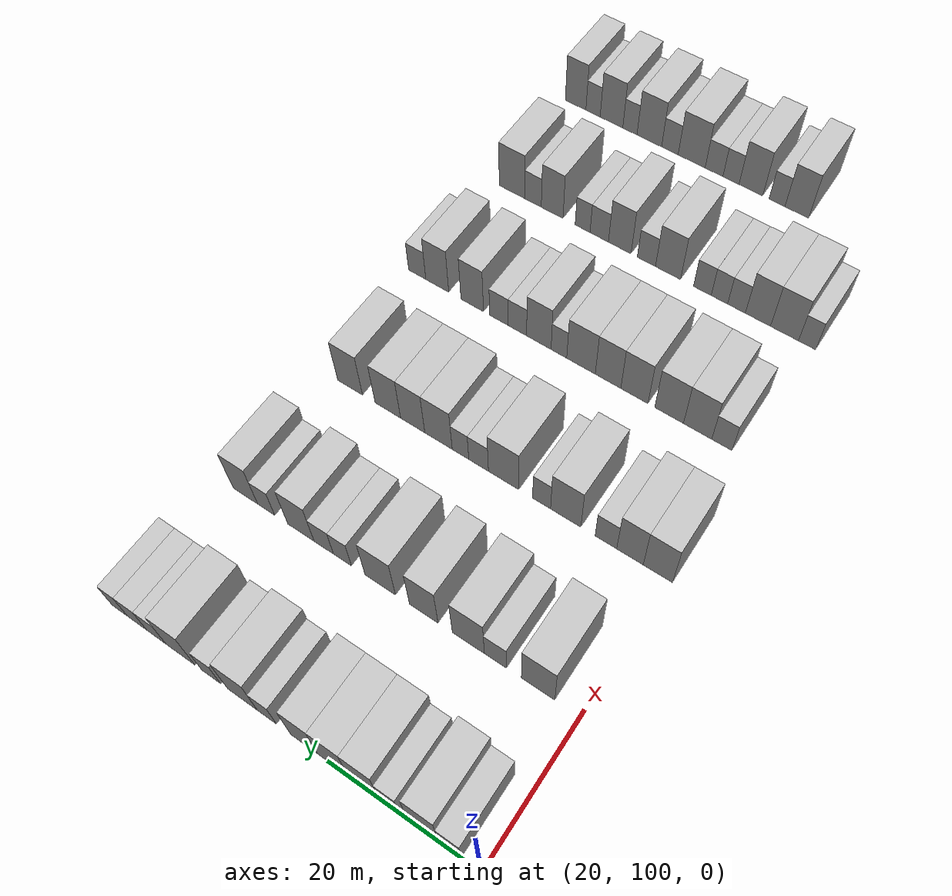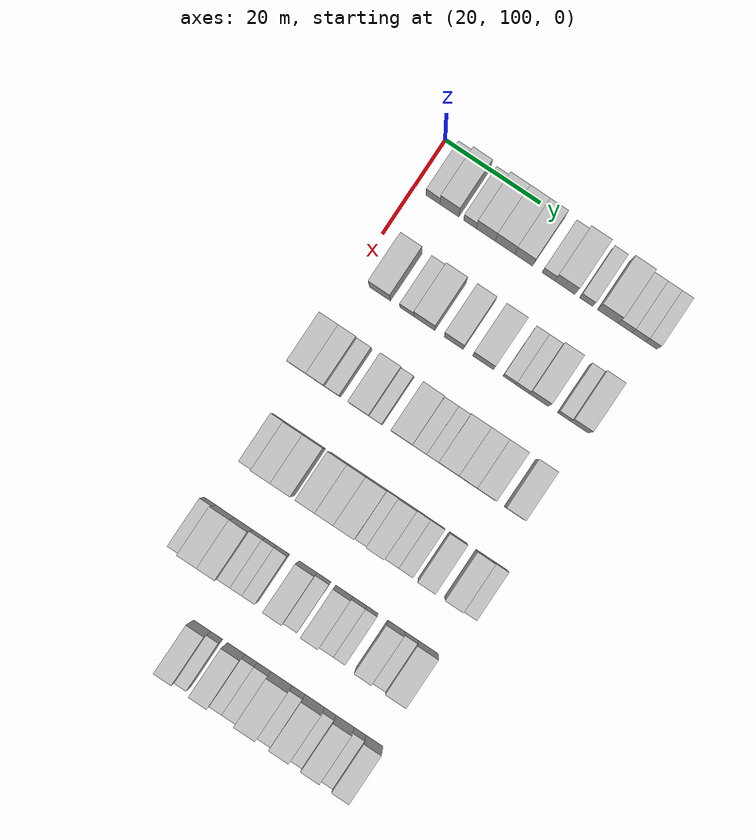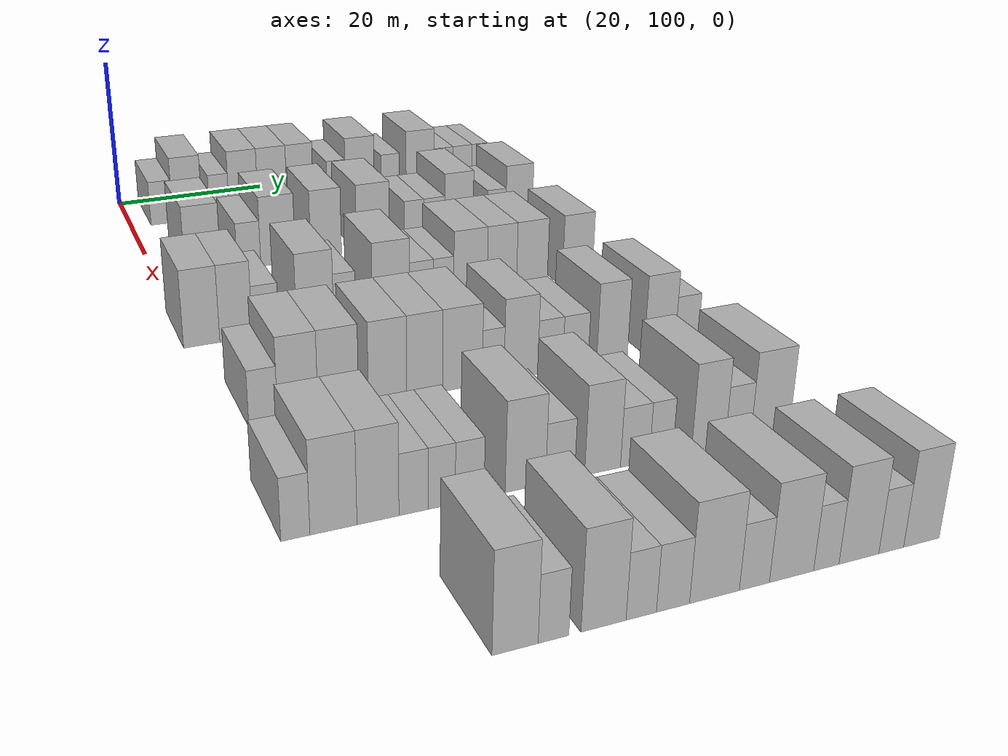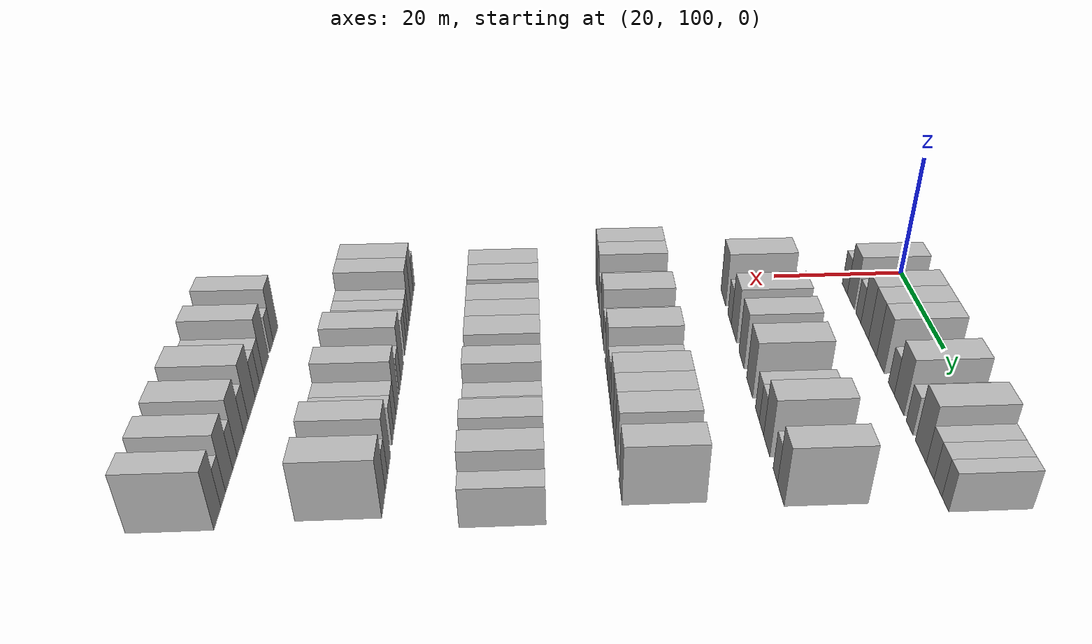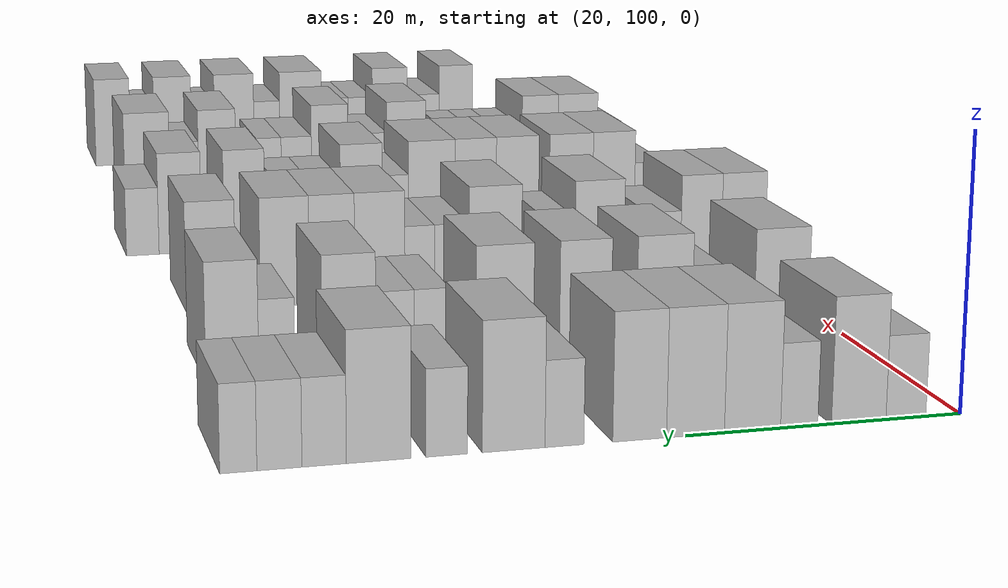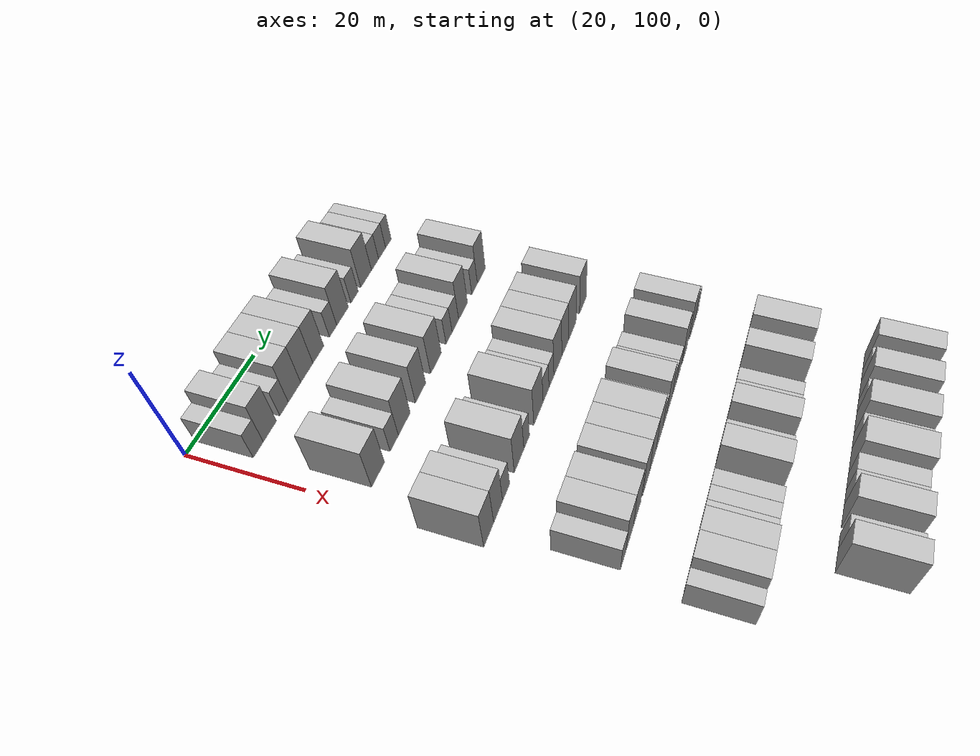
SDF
<sdf version="1.6">
 <world name="default">
  <model name="building_118">
   <static>1</static>
   <pose>25.0000 104.0523 0 0.000000 0.000000 0.000000</pose>
   <link name="link">
    <pose>0 0 3.00 0 0 0</pose>
    <collision name="collision"><geometry><box><size>10.0000 2.9543 6.0000</size></box></geometry></collision>
    <visual name="visual">
     <cast_shadows>0</cast_shadows>
     <geometry><box><size>10.0000 2.9543 6.0000</size></box></geometry>
     <material>
      <script>
       <uri>model://HANNAS_wall/materials/scripts</uri>
       <uri>model://HANNAS_wall/materials/textures</uri>
       <name>vrc/HANNAS_wall</name>
      </script>
     </material>
    </visual>
   </link>
  </model>
  <model name="building_119">
   <static>1</static>
   <pose>25.0000 107.5269 0 0.000000 0.000000 0.000000</pose>
   <link name="link">
    <pose>0 0 4.50 0 0 0</pose>
    <collision name="collision"><geometry><box><size>10.0000 3.9949 9.0000</size></box></geometry></collision>
    <visual name="visual">
     <cast_shadows>0</cast_shadows>
     <geometry><box><size>10.0000 3.9949 9.0000</size></box></geometry>
     <material>
      <script>
       <uri>model://HANNAS_wall/materials/scripts</uri>
       <uri>model://HANNAS_wall/materials/textures</uri>
       <name>vrc/HANNAS_wall</name>
      </script>
     </material>
    </visual>
   </link>
  </model>
  <model name="building_120">
   <static>1</static>
   <pose>25.0000 111.8724 0 0.000000 0.000000 0.000000</pose>
   <link name="link">
    <pose>0 0 3.00 0 0 0</pose>
    <collision name="collision"><geometry><box><size>10.0000 2.6960 6.0000</size></box></geometry></collision>
    <visual name="visual">
     <cast_shadows>0</cast_shadows>
     <geometry><box><size>10.0000 2.6960 6.0000</size></box></geometry>
     <material>
      <script>
       <uri>model://HANNAS_wall/materials/scripts</uri>
       <uri>model://HANNAS_wall/materials/textures</uri>
       <name>vrc/HANNAS_wall</name>
      </script>
     </material>
    </visual>
   </link>
  </model>
  <model name="building_121">
   <static>1</static>
   <pose>25.0000 115.2325 0 0.000000 0.000000 0.000000</pose>
   <link name="link">
    <pose>0 0 4.50 0 0 0</pose>
    <collision name="collision"><geometry><box><size>10.0000 4.0243 9.0000</size></box></geometry></collision>
    <visual name="visual">
     <cast_shadows>0</cast_shadows>
     <geometry><box><size>10.0000 4.0243 9.0000</size></box></geometry>
     <material>
      <script>
       <uri>model://HANNAS_wall/materials/scripts</uri>
       <uri>model://HANNAS_wall/materials/textures</uri>
       <name>vrc/HANNAS_wall</name>
      </script>
     </material>
    </visual>
   </link>
  </model>
  <model name="building_122">
   <static>1</static>
   <pose>25.0000 119.2965 0 0.000000 0.000000 0.000000</pose>
   <link name="link">
    <pose>0 0 4.50 0 0 0</pose>
    <collision name="collision"><geometry><box><size>10.0000 4.1036 9.0000</size></box></geometry></collision>
    <visual name="visual">
     <cast_shadows>0</cast_shadows>
     <geometry><box><size>10.0000 4.1036 9.0000</size></box></geometry>
     <material>
      <script>
       <uri>model://HANNAS_wall/materials/scripts</uri>
       <uri>model://HANNAS_wall/materials/textures</uri>
       <name>vrc/HANNAS_wall</name>
      </script>
     </material>
    </visual>
   </link>
  </model>
  <model name="building_123">
   <static>1</static>
   <pose>25.0000 123.2347 0 0.000000 0.000000 0.000000</pose>
   <link name="link">
    <pose>0 0 4.50 0 0 0</pose>
    <collision name="collision"><geometry><box><size>10.0000 3.7728 9.0000</size></box></geometry></collision>
    <visual name="visual">
     <cast_shadows>0</cast_shadows>
     <geometry><box><size>10.0000 3.7728 9.0000</size></box></geometry>
     <material>
      <script>
       <uri>model://HANNAS_wall/materials/scripts</uri>
       <uri>model://HANNAS_wall/materials/textures</uri>
       <name>vrc/HANNAS_wall</name>
      </script>
     </material>
    </visual>
   </link>
  </model>
  <model name="building_124">
   <static>1</static>
   <pose>25.0000 128.4607 0 0.000000 0.000000 0.000000</pose>
   <link name="link">
    <pose>0 0 3.00 0 0 0</pose>
    <collision name="collision"><geometry><box><size>10.0000 2.6792 6.0000</size></box></geometry></collision>
    <visual name="visual">
     <cast_shadows>0</cast_shadows>
     <geometry><box><size>10.0000 2.6792 6.0000</size></box></geometry>
     <material>
      <script>
       <uri>model://HANNAS_wall/materials/scripts</uri>
       <uri>model://HANNAS_wall/materials/textures</uri>
       <name>vrc/HANNAS_wall</name>
      </script>
     </material>
    </visual>
   </link>
  </model>
  <model name="building_125">
   <static>1</static>
   <pose>25.0000 131.9412 0 0.000000 0.000000 0.000000</pose>
   <link name="link">
    <pose>0 0 4.50 0 0 0</pose>
    <collision name="collision"><geometry><box><size>10.0000 4.2818 9.0000</size></box></geometry></collision>
    <visual name="visual">
     <cast_shadows>0</cast_shadows>
     <geometry><box><size>10.0000 4.2818 9.0000</size></box></geometry>
     <material>
      <script>
       <uri>model://HANNAS_wall/materials/scripts</uri>
       <uri>model://HANNAS_wall/materials/textures</uri>
       <name>vrc/HANNAS_wall</name>
      </script>
     </material>
    </visual>
   </link>
  </model>
  <model name="building_126">
   <static>1</static>
   <pose>25.0000 136.4782 0 0.000000 0.000000 0.000000</pose>
   <link name="link">
    <pose>0 0 3.00 0 0 0</pose>
    <collision name="collision"><geometry><box><size>10.0000 2.7922 6.0000</size></box></geometry></collision>
    <visual name="visual">
     <cast_shadows>0</cast_shadows>
     <geometry><box><size>10.0000 2.7922 6.0000</size></box></geometry>
     <material>
      <script>
       <uri>model://HANNAS_wall/materials/scripts</uri>
       <uri>model://HANNAS_wall/materials/textures</uri>
       <name>vrc/HANNAS_wall</name>
      </script>
     </material>
    </visual>
   </link>
  </model>
  <model name="building_127">
   <static>1</static>
   <pose>25.0000 141.0203 0 0.000000 0.000000 0.000000</pose>
   <link name="link">
    <pose>0 0 4.50 0 0 0</pose>
    <collision name="collision"><geometry><box><size>10.0000 4.2920 9.0000</size></box></geometry></collision>
    <visual name="visual">
     <cast_shadows>0</cast_shadows>
     <geometry><box><size>10.0000 4.2920 9.0000</size></box></geometry>
     <material>
      <script>
       <uri>model://HANNAS_wall/materials/scripts</uri>
       <uri>model://HANNAS_wall/materials/textures</uri>
       <name>vrc/HANNAS_wall</name>
      </script>
     </material>
    </visual>
   </link>
  </model>
  <model name="building_128">
   <static>1</static>
   <pose>25.0000 144.6242 0 0.000000 0.000000 0.000000</pose>
   <link name="link">
    <pose>0 0 3.00 0 0 0</pose>
    <collision name="collision"><geometry><box><size>10.0000 2.9158 6.0000</size></box></geometry></collision>
    <visual name="visual">
     <cast_shadows>0</cast_shadows>
     <geometry><box><size>10.0000 2.9158 6.0000</size></box></geometry>
     <material>
      <script>
       <uri>model://HANNAS_wall/materials/scripts</uri>
       <uri>model://HANNAS_wall/materials/textures</uri>
       <name>vrc/HANNAS_wall</name>
      </script>
     </material>
    </visual>
   </link>
  </model>
  <model name="building_129">
   <static>1</static>
   <pose>25.0000 147.5490 0 0.000000 0.000000 0.000000</pose>
   <link name="link">
    <pose>0 0 3.00 0 0 0</pose>
    <collision name="collision"><geometry><box><size>10.0000 2.9338 6.0000</size></box></geometry></collision>
    <visual name="visual">
     <cast_shadows>0</cast_shadows>
     <geometry><box><size>10.0000 2.9338 6.0000</size></box></geometry>
     <material>
      <script>
       <uri>model://HANNAS_wall/materials/scripts</uri>
       <uri>model://HANNAS_wall/materials/textures</uri>
       <name>vrc/HANNAS_wall</name>
      </script>
     </material>
    </visual>
   </link>
  </model>
  <model name="building_130">
   <static>1</static>
   <pose>25.0000 150.2169 0 0.000000 0.000000 0.000000</pose>
   <link name="link">
    <pose>0 0 3.00 0 0 0</pose>
    <collision name="collision"><geometry><box><size>10.0000 2.4021 6.0000</size></box></geometry></collision>
    <visual name="visual">
     <cast_shadows>0</cast_shadows>
     <geometry><box><size>10.0000 2.4021 6.0000</size></box></geometry>
     <material>
      <script>
       <uri>model://HANNAS_wall/materials/scripts</uri>
       <uri>model://HANNAS_wall/materials/textures</uri>
       <name>vrc/HANNAS_wall</name>
      </script>
     </material>
    </visual>
   </link>
  </model>
  <model name="building_294">
   <static>1</static>
   <pose>44.0000 105.5316 0 0.000000 0.000000 0.000000</pose>
   <link name="link">
    <pose>0 0 4.50 0 0 0</pose>
    <collision name="collision"><geometry><box><size>10.0000 4.4116 9.0000</size></box></geometry></collision>
    <visual name="visual">
     <cast_shadows>0</cast_shadows>
     <geometry><box><size>10.0000 4.4116 9.0000</size></box></geometry>
     <material>
      <script>
       <uri>model://HANNAS_wall/materials/scripts</uri>
       <uri>model://HANNAS_wall/materials/textures</uri>
       <name>vrc/HANNAS_wall</name>
      </script>
     </material>
    </visual>
   </link>
  </model>
  <model name="building_295">
   <static>1</static>
   <pose>44.0000 111.2223 0 0.000000 0.000000 0.000000</pose>
   <link name="link">
    <pose>0 0 3.00 0 0 0</pose>
    <collision name="collision"><geometry><box><size>10.0000 2.9697 6.0000</size></box></geometry></collision>
    <visual name="visual">
     <cast_shadows>0</cast_shadows>
     <geometry><box><size>10.0000 2.9697 6.0000</size></box></geometry>
     <material>
      <script>
       <uri>model://HANNAS_wall/materials/scripts</uri>
       <uri>model://HANNAS_wall/materials/textures</uri>
       <name>vrc/HANNAS_wall</name>
      </script>
     </material>
    </visual>
   </link>
  </model>
  <model name="building_296">
   <static>1</static>
   <pose>44.0000 114.9049 0 0.000000 0.000000 0.000000</pose>
   <link name="link">
    <pose>0 0 4.50 0 0 0</pose>
    <collision name="collision"><geometry><box><size>10.0000 4.3956 9.0000</size></box></geometry></collision>
    <visual name="visual">
     <cast_shadows>0</cast_shadows>
     <geometry><box><size>10.0000 4.3956 9.0000</size></box></geometry>
     <material>
      <script>
       <uri>model://HANNAS_wall/materials/scripts</uri>
       <uri>model://HANNAS_wall/materials/textures</uri>
       <name>vrc/HANNAS_wall</name>
      </script>
     </material>
    </visual>
   </link>
  </model>
  <model name="building_297">
   <static>1</static>
   <pose>44.0000 121.1136 0 0.000000 0.000000 0.000000</pose>
   <link name="link">
    <pose>0 0 4.50 0 0 0</pose>
    <collision name="collision"><geometry><box><size>10.0000 4.0219 9.0000</size></box></geometry></collision>
    <visual name="visual">
     <cast_shadows>0</cast_shadows>
     <geometry><box><size>10.0000 4.0219 9.0000</size></box></geometry>
     <material>
      <script>
       <uri>model://HANNAS_wall/materials/scripts</uri>
       <uri>model://HANNAS_wall/materials/textures</uri>
       <name>vrc/HANNAS_wall</name>
      </script>
     </material>
    </visual>
   </link>
  </model>
  <model name="building_298">
   <static>1</static>
   <pose>44.0000 127.3327 0 0.000000 0.000000 0.000000</pose>
   <link name="link">
    <pose>0 0 4.50 0 0 0</pose>
    <collision name="collision"><geometry><box><size>10.0000 4.4162 9.0000</size></box></geometry></collision>
    <visual name="visual">
     <cast_shadows>0</cast_shadows>
     <geometry><box><size>10.0000 4.4162 9.0000</size></box></geometry>
     <material>
      <script>
       <uri>model://HANNAS_wall/materials/scripts</uri>
       <uri>model://HANNAS_wall/materials/textures</uri>
       <name>vrc/HANNAS_wall</name>
      </script>
     </material>
    </visual>
   </link>
  </model>
  <model name="building_299">
   <static>1</static>
   <pose>44.0000 132.8720 0 0.000000 0.000000 0.000000</pose>
   <link name="link">
    <pose>0 0 3.00 0 0 0</pose>
    <collision name="collision"><geometry><box><size>10.0000 2.6623 6.0000</size></box></geometry></collision>
    <visual name="visual">
     <cast_shadows>0</cast_shadows>
     <geometry><box><size>10.0000 2.6623 6.0000</size></box></geometry>
     <material>
      <script>
       <uri>model://HANNAS_wall/materials/scripts</uri>
       <uri>model://HANNAS_wall/materials/textures</uri>
       <name>vrc/HANNAS_wall</name>
      </script>
     </material>
    </visual>
   </link>
  </model>
  <model name="building_300">
   <static>1</static>
   <pose>44.0000 135.6521 0 0.000000 0.000000 0.000000</pose>
   <link name="link">
    <pose>0 0 3.00 0 0 0</pose>
    <collision name="collision"><geometry><box><size>10.0000 2.8979 6.0000</size></box></geometry></collision>
    <visual name="visual">
     <cast_shadows>0</cast_shadows>
     <geometry><box><size>10.0000 2.8979 6.0000</size></box></geometry>
     <material>
      <script>
       <uri>model://HANNAS_wall/materials/scripts</uri>
       <uri>model://HANNAS_wall/materials/textures</uri>
       <name>vrc/HANNAS_wall</name>
      </script>
     </material>
    </visual>
   </link>
  </model>
  <model name="building_301">
   <static>1</static>
   <pose>44.0000 139.1037 0 0.000000 0.000000 0.000000</pose>
   <link name="link">
    <pose>0 0 4.50 0 0 0</pose>
    <collision name="collision"><geometry><box><size>10.0000 4.0052 9.0000</size></box></geometry></collision>
    <visual name="visual">
     <cast_shadows>0</cast_shadows>
     <geometry><box><size>10.0000 4.0052 9.0000</size></box></geometry>
     <material>
      <script>
       <uri>model://HANNAS_wall/materials/scripts</uri>
       <uri>model://HANNAS_wall/materials/textures</uri>
       <name>vrc/HANNAS_wall</name>
      </script>
     </material>
    </visual>
   </link>
  </model>
  <model name="building_302">
   <static>1</static>
   <pose>44.0000 144.4289 0 0.000000 0.000000 0.000000</pose>
   <link name="link">
    <pose>0 0 3.00 0 0 0</pose>
    <collision name="collision"><geometry><box><size>10.0000 2.6452 6.0000</size></box></geometry></collision>
    <visual name="visual">
     <cast_shadows>0</cast_shadows>
     <geometry><box><size>10.0000 2.6452 6.0000</size></box></geometry>
     <material>
      <script>
       <uri>model://HANNAS_wall/materials/scripts</uri>
       <uri>model://HANNAS_wall/materials/textures</uri>
       <name>vrc/HANNAS_wall</name>
      </script>
     </material>
    </visual>
   </link>
  </model>
  <model name="building_303">
   <static>1</static>
   <pose>44.0000 147.6780 0 0.000000 0.000000 0.000000</pose>
   <link name="link">
    <pose>0 0 4.50 0 0 0</pose>
    <collision name="collision"><geometry><box><size>10.0000 3.8530 9.0000</size></box></geometry></collision>
    <visual name="visual">
     <cast_shadows>0</cast_shadows>
     <geometry><box><size>10.0000 3.8530 9.0000</size></box></geometry>
     <material>
      <script>
       <uri>model://HANNAS_wall/materials/scripts</uri>
       <uri>model://HANNAS_wall/materials/textures</uri>
       <name>vrc/HANNAS_wall</name>
      </script>
     </material>
    </visual>
   </link>
  </model>
  <model name="building_467">
   <static>1</static>
   <pose>63.0000 101.2765 0 0.000000 0.000000 0.000000</pose>
   <link name="link">
    <pose>0 0 4.50 0 0 0</pose>
    <collision name="collision"><geometry><box><size>10.0000 3.9455 9.0000</size></box></geometry></collision>
    <visual name="visual">
     <cast_shadows>0</cast_shadows>
     <geometry><box><size>10.0000 3.9455 9.0000</size></box></geometry>
     <material>
      <script>
       <uri>model://HANNAS_wall/materials/scripts</uri>
       <uri>model://HANNAS_wall/materials/textures</uri>
       <name>vrc/HANNAS_wall</name>
      </script>
     </material>
    </visual>
   </link>
  </model>
  <model name="building_468">
   <static>1</static>
   <pose>63.0000 105.0587 0 0.000000 0.000000 0.000000</pose>
   <link name="link">
    <pose>0 0 4.50 0 0 0</pose>
    <collision name="collision"><geometry><box><size>10.0000 3.6188 9.0000</size></box></geometry></collision>
    <visual name="visual">
     <cast_shadows>0</cast_shadows>
     <geometry><box><size>10.0000 3.6188 9.0000</size></box></geometry>
     <material>
      <script>
       <uri>model://HANNAS_wall/materials/scripts</uri>
       <uri>model://HANNAS_wall/materials/textures</uri>
       <name>vrc/HANNAS_wall</name>
      </script>
     </material>
    </visual>
   </link>
  </model>
  <model name="building_469">
   <static>1</static>
   <pose>63.0000 108.3523 0 0.000000 0.000000 0.000000</pose>
   <link name="link">
    <pose>0 0 3.00 0 0 0</pose>
    <collision name="collision"><geometry><box><size>10.0000 2.9684 6.0000</size></box></geometry></collision>
    <visual name="visual">
     <cast_shadows>0</cast_shadows>
     <geometry><box><size>10.0000 2.9684 6.0000</size></box></geometry>
     <material>
      <script>
       <uri>model://HANNAS_wall/materials/scripts</uri>
       <uri>model://HANNAS_wall/materials/textures</uri>
       <name>vrc/HANNAS_wall</name>
      </script>
     </material>
    </visual>
   </link>
  </model>
  <model name="building_470">
   <static>1</static>
   <pose>63.0000 113.9792 0 0.000000 0.000000 0.000000</pose>
   <link name="link">
    <pose>0 0 4.50 0 0 0</pose>
    <collision name="collision"><geometry><box><size>10.0000 4.2854 9.0000</size></box></geometry></collision>
    <visual name="visual">
     <cast_shadows>0</cast_shadows>
     <geometry><box><size>10.0000 4.2854 9.0000</size></box></geometry>
     <material>
      <script>
       <uri>model://HANNAS_wall/materials/scripts</uri>
       <uri>model://HANNAS_wall/materials/textures</uri>
       <name>vrc/HANNAS_wall</name>
      </script>
     </material>
    </visual>
   </link>
  </model>
  <model name="building_471">
   <static>1</static>
   <pose>63.0000 117.4067 0 0.000000 0.000000 0.000000</pose>
   <link name="link">
    <pose>0 0 3.00 0 0 0</pose>
    <collision name="collision"><geometry><box><size>10.0000 2.5697 6.0000</size></box></geometry></collision>
    <visual name="visual">
     <cast_shadows>0</cast_shadows>
     <geometry><box><size>10.0000 2.5697 6.0000</size></box></geometry>
     <material>
      <script>
       <uri>model://HANNAS_wall/materials/scripts</uri>
       <uri>model://HANNAS_wall/materials/textures</uri>
       <name>vrc/HANNAS_wall</name>
      </script>
     </material>
    </visual>
   </link>
  </model>
  <model name="building_472">
   <static>1</static>
   <pose>63.0000 122.9207 0 0.000000 0.000000 0.000000</pose>
   <link name="link">
    <pose>0 0 4.50 0 0 0</pose>
    <collision name="collision"><geometry><box><size>10.0000 4.4583 9.0000</size></box></geometry></collision>
    <visual name="visual">
     <cast_shadows>0</cast_shadows>
     <geometry><box><size>10.0000 4.4583 9.0000</size></box></geometry>
     <material>
      <script>
       <uri>model://HANNAS_wall/materials/scripts</uri>
       <uri>model://HANNAS_wall/materials/textures</uri>
       <name>vrc/HANNAS_wall</name>
      </script>
     </material>
    </visual>
   </link>
  </model>
  <model name="building_473">
   <static>1</static>
   <pose>63.0000 126.6122 0 0.000000 0.000000 0.000000</pose>
   <link name="link">
    <pose>0 0 3.00 0 0 0</pose>
    <collision name="collision"><geometry><box><size>10.0000 2.9247 6.0000</size></box></geometry></collision>
    <visual name="visual">
     <cast_shadows>0</cast_shadows>
     <geometry><box><size>10.0000 2.9247 6.0000</size></box></geometry>
     <material>
      <script>
       <uri>model://HANNAS_wall/materials/scripts</uri>
       <uri>model://HANNAS_wall/materials/textures</uri>
       <name>vrc/HANNAS_wall</name>
      </script>
     </material>
    </visual>
   </link>
  </model>
  <model name="building_474">
   <static>1</static>
   <pose>63.0000 129.3201 0 0.000000 0.000000 0.000000</pose>
   <link name="link">
    <pose>0 0 3.00 0 0 0</pose>
    <collision name="collision"><geometry><box><size>10.0000 2.4909 6.0000</size></box></geometry></collision>
    <visual name="visual">
     <cast_shadows>0</cast_shadows>
     <geometry><box><size>10.0000 2.4909 6.0000</size></box></geometry>
     <material>
      <script>
       <uri>model://HANNAS_wall/materials/scripts</uri>
       <uri>model://HANNAS_wall/materials/textures</uri>
       <name>vrc/HANNAS_wall</name>
      </script>
     </material>
    </visual>
   </link>
  </model>
  <model name="building_475">
   <static>1</static>
   <pose>63.0000 132.6519 0 0.000000 0.000000 0.000000</pose>
   <link name="link">
    <pose>0 0 4.50 0 0 0</pose>
    <collision name="collision"><geometry><box><size>10.0000 4.1727 9.0000</size></box></geometry></collision>
    <visual name="visual">
     <cast_shadows>0</cast_shadows>
     <geometry><box><size>10.0000 4.1727 9.0000</size></box></geometry>
     <material>
      <script>
       <uri>model://HANNAS_wall/materials/scripts</uri>
       <uri>model://HANNAS_wall/materials/textures</uri>
       <name>vrc/HANNAS_wall</name>
      </script>
     </material>
    </visual>
   </link>
  </model>
  <model name="building_476">
   <static>1</static>
   <pose>63.0000 136.6117 0 0.000000 0.000000 0.000000</pose>
   <link name="link">
    <pose>0 0 4.50 0 0 0</pose>
    <collision name="collision"><geometry><box><size>10.0000 3.7470 9.0000</size></box></geometry></collision>
    <visual name="visual">
     <cast_shadows>0</cast_shadows>
     <geometry><box><size>10.0000 3.7470 9.0000</size></box></geometry>
     <material>
      <script>
       <uri>model://HANNAS_wall/materials/scripts</uri>
       <uri>model://HANNAS_wall/materials/textures</uri>
       <name>vrc/HANNAS_wall</name>
      </script>
     </material>
    </visual>
   </link>
  </model>
  <model name="building_477">
   <static>1</static>
   <pose>63.0000 140.4881 0 0.000000 0.000000 0.000000</pose>
   <link name="link">
    <pose>0 0 4.50 0 0 0</pose>
    <collision name="collision"><geometry><box><size>10.0000 4.0059 9.0000</size></box></geometry></collision>
    <visual name="visual">
     <cast_shadows>0</cast_shadows>
     <geometry><box><size>10.0000 4.0059 9.0000</size></box></geometry>
     <material>
      <script>
       <uri>model://HANNAS_wall/materials/scripts</uri>
       <uri>model://HANNAS_wall/materials/textures</uri>
       <name>vrc/HANNAS_wall</name>
      </script>
     </material>
    </visual>
   </link>
  </model>
  <model name="building_478">
   <static>1</static>
   <pose>63.0000 146.4846 0 0.000000 0.000000 0.000000</pose>
   <link name="link">
    <pose>0 0 4.50 0 0 0</pose>
    <collision name="collision"><geometry><box><size>10.0000 3.9870 9.0000</size></box></geometry></collision>
    <visual name="visual">
     <cast_shadows>0</cast_shadows>
     <geometry><box><size>10.0000 3.9870 9.0000</size></box></geometry>
     <material>
      <script>
       <uri>model://HANNAS_wall/materials/scripts</uri>
       <uri>model://HANNAS_wall/materials/textures</uri>
       <name>vrc/HANNAS_wall</name>
      </script>
     </material>
    </visual>
   </link>
  </model>
  <model name="building_619">
   <static>1</static>
   <pose>82.0000 103.1457 0 0.000000 0.000000 0.000000</pose>
   <link name="link">
    <pose>0 0 3.00 0 0 0</pose>
    <collision name="collision"><geometry><box><size>10.0000 2.8428 6.0000</size></box></geometry></collision>
    <visual name="visual">
     <cast_shadows>0</cast_shadows>
     <geometry><box><size>10.0000 2.8428 6.0000</size></box></geometry>
     <material>
      <script>
       <uri>model://HANNAS_wall/materials/scripts</uri>
       <uri>model://HANNAS_wall/materials/textures</uri>
       <name>vrc/HANNAS_wall</name>
      </script>
     </material>
    </visual>
   </link>
  </model>
  <model name="building_620">
   <static>1</static>
   <pose>82.0000 106.5761 0 0.000000 0.000000 0.000000</pose>
   <link name="link">
    <pose>0 0 4.50 0 0 0</pose>
    <collision name="collision"><geometry><box><size>10.0000 4.0182 9.0000</size></box></geometry></collision>
    <visual name="visual">
     <cast_shadows>0</cast_shadows>
     <geometry><box><size>10.0000 4.0182 9.0000</size></box></geometry>
     <material>
      <script>
       <uri>model://HANNAS_wall/materials/scripts</uri>
       <uri>model://HANNAS_wall/materials/textures</uri>
       <name>vrc/HANNAS_wall</name>
      </script>
     </material>
    </visual>
   </link>
  </model>
  <model name="building_621">
   <static>1</static>
   <pose>82.0000 110.6541 0 0.000000 0.000000 0.000000</pose>
   <link name="link">
    <pose>0 0 4.50 0 0 0</pose>
    <collision name="collision"><geometry><box><size>10.0000 4.1377 9.0000</size></box></geometry></collision>
    <visual name="visual">
     <cast_shadows>0</cast_shadows>
     <geometry><box><size>10.0000 4.1377 9.0000</size></box></geometry>
     <material>
      <script>
       <uri>model://HANNAS_wall/materials/scripts</uri>
       <uri>model://HANNAS_wall/materials/textures</uri>
       <name>vrc/HANNAS_wall</name>
      </script>
     </material>
    </visual>
   </link>
  </model>
  <model name="building_622">
   <static>1</static>
   <pose>82.0000 115.7243 0 0.000000 0.000000 0.000000</pose>
   <link name="link">
    <pose>0 0 4.50 0 0 0</pose>
    <collision name="collision"><geometry><box><size>10.0000 4.0026 9.0000</size></box></geometry></collision>
    <visual name="visual">
     <cast_shadows>0</cast_shadows>
     <geometry><box><size>10.0000 4.0026 9.0000</size></box></geometry>
     <material>
      <script>
       <uri>model://HANNAS_wall/materials/scripts</uri>
       <uri>model://HANNAS_wall/materials/textures</uri>
       <name>vrc/HANNAS_wall</name>
      </script>
     </material>
    </visual>
   </link>
  </model>
  <model name="building_623">
   <static>1</static>
   <pose>82.0000 119.6365 0 0.000000 0.000000 0.000000</pose>
   <link name="link">
    <pose>0 0 4.50 0 0 0</pose>
    <collision name="collision"><geometry><box><size>10.0000 3.8219 9.0000</size></box></geometry></collision>
    <visual name="visual">
     <cast_shadows>0</cast_shadows>
     <geometry><box><size>10.0000 3.8219 9.0000</size></box></geometry>
     <material>
      <script>
       <uri>model://HANNAS_wall/materials/scripts</uri>
       <uri>model://HANNAS_wall/materials/textures</uri>
       <name>vrc/HANNAS_wall</name>
      </script>
     </material>
    </visual>
   </link>
  </model>
  <model name="building_624">
   <static>1</static>
   <pose>82.0000 123.7132 0 0.000000 0.000000 0.000000</pose>
   <link name="link">
    <pose>0 0 4.50 0 0 0</pose>
    <collision name="collision"><geometry><box><size>10.0000 4.3314 9.0000</size></box></geometry></collision>
    <visual name="visual">
     <cast_shadows>0</cast_shadows>
     <geometry><box><size>10.0000 4.3314 9.0000</size></box></geometry>
     <material>
      <script>
       <uri>model://HANNAS_wall/materials/scripts</uri>
       <uri>model://HANNAS_wall/materials/textures</uri>
       <name>vrc/HANNAS_wall</name>
      </script>
     </material>
    </visual>
   </link>
  </model>
  <model name="building_625">
   <static>1</static>
   <pose>82.0000 127.0819 0 0.000000 0.000000 0.000000</pose>
   <link name="link">
    <pose>0 0 3.00 0 0 0</pose>
    <collision name="collision"><geometry><box><size>10.0000 2.4060 6.0000</size></box></geometry></collision>
    <visual name="visual">
     <cast_shadows>0</cast_shadows>
     <geometry><box><size>10.0000 2.4060 6.0000</size></box></geometry>
     <material>
      <script>
       <uri>model://HANNAS_wall/materials/scripts</uri>
       <uri>model://HANNAS_wall/materials/textures</uri>
       <name>vrc/HANNAS_wall</name>
      </script>
     </material>
    </visual>
   </link>
  </model>
  <model name="building_626">
   <static>1</static>
   <pose>82.0000 130.1892 0 0.000000 0.000000 0.000000</pose>
   <link name="link">
    <pose>0 0 4.50 0 0 0</pose>
    <collision name="collision"><geometry><box><size>10.0000 3.8086 9.0000</size></box></geometry></collision>
    <visual name="visual">
     <cast_shadows>0</cast_shadows>
     <geometry><box><size>10.0000 3.8086 9.0000</size></box></geometry>
     <material>
      <script>
       <uri>model://HANNAS_wall/materials/scripts</uri>
       <uri>model://HANNAS_wall/materials/textures</uri>
       <name>vrc/HANNAS_wall</name>
      </script>
     </material>
    </visual>
   </link>
  </model>
  <model name="building_627">
   <static>1</static>
   <pose>82.0000 133.5313 0 0.000000 0.000000 0.000000</pose>
   <link name="link">
    <pose>0 0 3.00 0 0 0</pose>
    <collision name="collision"><geometry><box><size>10.0000 2.8755 6.0000</size></box></geometry></collision>
    <visual name="visual">
     <cast_shadows>0</cast_shadows>
     <geometry><box><size>10.0000 2.8755 6.0000</size></box></geometry>
     <material>
      <script>
       <uri>model://HANNAS_wall/materials/scripts</uri>
       <uri>model://HANNAS_wall/materials/textures</uri>
       <name>vrc/HANNAS_wall</name>
      </script>
     </material>
    </visual>
   </link>
  </model>
  <model name="building_628">
   <static>1</static>
   <pose>82.0000 136.4435 0 0.000000 0.000000 0.000000</pose>
   <link name="link">
    <pose>0 0 3.00 0 0 0</pose>
    <collision name="collision"><geometry><box><size>10.0000 2.9489 6.0000</size></box></geometry></collision>
    <visual name="visual">
     <cast_shadows>0</cast_shadows>
     <geometry><box><size>10.0000 2.9489 6.0000</size></box></geometry>
     <material>
      <script>
       <uri>model://HANNAS_wall/materials/scripts</uri>
       <uri>model://HANNAS_wall/materials/textures</uri>
       <name>vrc/HANNAS_wall</name>
      </script>
     </material>
    </visual>
   </link>
  </model>
  <model name="building_629">
   <static>1</static>
   <pose>82.0000 140.7430 0 0.000000 0.000000 0.000000</pose>
   <link name="link">
    <pose>0 0 4.50 0 0 0</pose>
    <collision name="collision"><geometry><box><size>10.0000 3.6500 9.0000</size></box></geometry></collision>
    <visual name="visual">
     <cast_shadows>0</cast_shadows>
     <geometry><box><size>10.0000 3.6500 9.0000</size></box></geometry>
     <material>
      <script>
       <uri>model://HANNAS_wall/materials/scripts</uri>
       <uri>model://HANNAS_wall/materials/textures</uri>
       <name>vrc/HANNAS_wall</name>
      </script>
     </material>
    </visual>
   </link>
  </model>
  <model name="building_630">
   <static>1</static>
   <pose>82.0000 146.4532 0 0.000000 0.000000 0.000000</pose>
   <link name="link">
    <pose>0 0 4.50 0 0 0</pose>
    <collision name="collision"><geometry><box><size>10.0000 3.7704 9.0000</size></box></geometry></collision>
    <visual name="visual">
     <cast_shadows>0</cast_shadows>
     <geometry><box><size>10.0000 3.7704 9.0000</size></box></geometry>
     <material>
      <script>
       <uri>model://HANNAS_wall/materials/scripts</uri>
       <uri>model://HANNAS_wall/materials/textures</uri>
       <name>vrc/HANNAS_wall</name>
      </script>
     </material>
    </visual>
   </link>
  </model>
  <model name="building_631">
   <static>1</static>
   <pose>82.0000 149.7665 0 0.000000 0.000000 0.000000</pose>
   <link name="link">
    <pose>0 0 3.00 0 0 0</pose>
    <collision name="collision"><geometry><box><size>10.0000 2.8562 6.0000</size></box></geometry></collision>
    <visual name="visual">
     <cast_shadows>0</cast_shadows>
     <geometry><box><size>10.0000 2.8562 6.0000</size></box></geometry>
     <material>
      <script>
       <uri>model://HANNAS_wall/materials/scripts</uri>
       <uri>model://HANNAS_wall/materials/textures</uri>
       <name>vrc/HANNAS_wall</name>
      </script>
     </material>
    </visual>
   </link>
  </model>
  <model name="building_794">
   <static>1</static>
   <pose>101.0000 100.8990 0 0.000000 0.000000 0.000000</pose>
   <link name="link">
    <pose>0 0 3.00 0 0 0</pose>
    <collision name="collision"><geometry><box><size>10.0000 2.4793 6.0000</size></box></geometry></collision>
    <visual name="visual">
     <cast_shadows>0</cast_shadows>
     <geometry><box><size>10.0000 2.4793 6.0000</size></box></geometry>
     <material>
      <script>
       <uri>model://HANNAS_wall/materials/scripts</uri>
       <uri>model://HANNAS_wall/materials/textures</uri>
       <name>vrc/HANNAS_wall</name>
      </script>
     </material>
    </visual>
   </link>
  </model>
  <model name="building_795">
   <static>1</static>
   <pose>101.0000 104.1813 0 0.000000 0.000000 0.000000</pose>
   <link name="link">
    <pose>0 0 4.50 0 0 0</pose>
    <collision name="collision"><geometry><box><size>10.0000 4.0852 9.0000</size></box></geometry></collision>
    <visual name="visual">
     <cast_shadows>0</cast_shadows>
     <geometry><box><size>10.0000 4.0852 9.0000</size></box></geometry>
     <material>
      <script>
       <uri>model://HANNAS_wall/materials/scripts</uri>
       <uri>model://HANNAS_wall/materials/textures</uri>
       <name>vrc/HANNAS_wall</name>
      </script>
     </material>
    </visual>
   </link>
  </model>
  <model name="building_796">
   <static>1</static>
   <pose>101.0000 108.0874 0 0.000000 0.000000 0.000000</pose>
   <link name="link">
    <pose>0 0 4.50 0 0 0</pose>
    <collision name="collision"><geometry><box><size>10.0000 3.7269 9.0000</size></box></geometry></collision>
    <visual name="visual">
     <cast_shadows>0</cast_shadows>
     <geometry><box><size>10.0000 3.7269 9.0000</size></box></geometry>
     <material>
      <script>
       <uri>model://HANNAS_wall/materials/scripts</uri>
       <uri>model://HANNAS_wall/materials/textures</uri>
       <name>vrc/HANNAS_wall</name>
      </script>
     </material>
    </visual>
   </link>
  </model>
  <model name="building_797">
   <static>1</static>
   <pose>101.0000 111.2760 0 0.000000 0.000000 0.000000</pose>
   <link name="link">
    <pose>0 0 3.00 0 0 0</pose>
    <collision name="collision"><geometry><box><size>10.0000 2.6504 6.0000</size></box></geometry></collision>
    <visual name="visual">
     <cast_shadows>0</cast_shadows>
     <geometry><box><size>10.0000 2.6504 6.0000</size></box></geometry>
     <material>
      <script>
       <uri>model://HANNAS_wall/materials/scripts</uri>
       <uri>model://HANNAS_wall/materials/textures</uri>
       <name>vrc/HANNAS_wall</name>
      </script>
     </material>
    </visual>
   </link>
  </model>
  <model name="building_798">
   <static>1</static>
   <pose>101.0000 113.8405 0 0.000000 0.000000 0.000000</pose>
   <link name="link">
    <pose>0 0 3.00 0 0 0</pose>
    <collision name="collision"><geometry><box><size>10.0000 2.4785 6.0000</size></box></geometry></collision>
    <visual name="visual">
     <cast_shadows>0</cast_shadows>
     <geometry><box><size>10.0000 2.4785 6.0000</size></box></geometry>
     <material>
      <script>
       <uri>model://HANNAS_wall/materials/scripts</uri>
       <uri>model://HANNAS_wall/materials/textures</uri>
       <name>vrc/HANNAS_wall</name>
      </script>
     </material>
    </visual>
   </link>
  </model>
  <model name="building_799">
   <static>1</static>
   <pose>101.0000 116.4279 0 0.000000 0.000000 0.000000</pose>
   <link name="link">
    <pose>0 0 3.00 0 0 0</pose>
    <collision name="collision"><geometry><box><size>10.0000 2.6962 6.0000</size></box></geometry></collision>
    <visual name="visual">
     <cast_shadows>0</cast_shadows>
     <geometry><box><size>10.0000 2.6962 6.0000</size></box></geometry>
     <material>
      <script>
       <uri>model://HANNAS_wall/materials/scripts</uri>
       <uri>model://HANNAS_wall/materials/textures</uri>
       <name>vrc/HANNAS_wall</name>
      </script>
     </material>
    </visual>
   </link>
  </model>
  <model name="building_800">
   <static>1</static>
   <pose>101.0000 121.7258 0 0.000000 0.000000 0.000000</pose>
   <link name="link">
    <pose>0 0 4.50 0 0 0</pose>
    <collision name="collision"><geometry><box><size>10.0000 3.8997 9.0000</size></box></geometry></collision>
    <visual name="visual">
     <cast_shadows>0</cast_shadows>
     <geometry><box><size>10.0000 3.8997 9.0000</size></box></geometry>
     <material>
      <script>
       <uri>model://HANNAS_wall/materials/scripts</uri>
       <uri>model://HANNAS_wall/materials/textures</uri>
       <name>vrc/HANNAS_wall</name>
      </script>
     </material>
    </visual>
   </link>
  </model>
  <model name="building_801">
   <static>1</static>
   <pose>101.0000 125.1034 0 0.000000 0.000000 0.000000</pose>
   <link name="link">
    <pose>0 0 3.00 0 0 0</pose>
    <collision name="collision"><geometry><box><size>10.0000 2.8555 6.0000</size></box></geometry></collision>
    <visual name="visual">
     <cast_shadows>0</cast_shadows>
     <geometry><box><size>10.0000 2.8555 6.0000</size></box></geometry>
     <material>
      <script>
       <uri>model://HANNAS_wall/materials/scripts</uri>
       <uri>model://HANNAS_wall/materials/textures</uri>
       <name>vrc/HANNAS_wall</name>
      </script>
     </material>
    </visual>
   </link>
  </model>
  <model name="building_802">
   <static>1</static>
   <pose>101.0000 129.3386 0 0.000000 0.000000 0.000000</pose>
   <link name="link">
    <pose>0 0 4.50 0 0 0</pose>
    <collision name="collision"><geometry><box><size>10.0000 3.6148 9.0000</size></box></geometry></collision>
    <visual name="visual">
     <cast_shadows>0</cast_shadows>
     <geometry><box><size>10.0000 3.6148 9.0000</size></box></geometry>
     <material>
      <script>
       <uri>model://HANNAS_wall/materials/scripts</uri>
       <uri>model://HANNAS_wall/materials/textures</uri>
       <name>vrc/HANNAS_wall</name>
      </script>
     </material>
    </visual>
   </link>
  </model>
  <model name="building_803">
   <static>1</static>
   <pose>101.0000 132.6298 0 0.000000 0.000000 0.000000</pose>
   <link name="link">
    <pose>0 0 3.00 0 0 0</pose>
    <collision name="collision"><geometry><box><size>10.0000 2.9675 6.0000</size></box></geometry></collision>
    <visual name="visual">
     <cast_shadows>0</cast_shadows>
     <geometry><box><size>10.0000 2.9675 6.0000</size></box></geometry>
     <material>
      <script>
       <uri>model://HANNAS_wall/materials/scripts</uri>
       <uri>model://HANNAS_wall/materials/textures</uri>
       <name>vrc/HANNAS_wall</name>
      </script>
     </material>
    </visual>
   </link>
  </model>
  <model name="building_804">
   <static>1</static>
   <pose>101.0000 135.3295 0 0.000000 0.000000 0.000000</pose>
   <link name="link">
    <pose>0 0 3.00 0 0 0</pose>
    <collision name="collision"><geometry><box><size>10.0000 2.4319 6.0000</size></box></geometry></collision>
    <visual name="visual">
     <cast_shadows>0</cast_shadows>
     <geometry><box><size>10.0000 2.4319 6.0000</size></box></geometry>
     <material>
      <script>
       <uri>model://HANNAS_wall/materials/scripts</uri>
       <uri>model://HANNAS_wall/materials/textures</uri>
       <name>vrc/HANNAS_wall</name>
      </script>
     </material>
    </visual>
   </link>
  </model>
  <model name="building_805">
   <static>1</static>
   <pose>101.0000 140.3512 0 0.000000 0.000000 0.000000</pose>
   <link name="link">
    <pose>0 0 4.50 0 0 0</pose>
    <collision name="collision"><geometry><box><size>10.0000 3.6116 9.0000</size></box></geometry></collision>
    <visual name="visual">
     <cast_shadows>0</cast_shadows>
     <geometry><box><size>10.0000 3.6116 9.0000</size></box></geometry>
     <material>
      <script>
       <uri>model://HANNAS_wall/materials/scripts</uri>
       <uri>model://HANNAS_wall/materials/textures</uri>
       <name>vrc/HANNAS_wall</name>
      </script>
     </material>
    </visual>
   </link>
  </model>
  <model name="building_806">
   <static>1</static>
   <pose>101.0000 143.5455 0 0.000000 0.000000 0.000000</pose>
   <link name="link">
    <pose>0 0 3.00 0 0 0</pose>
    <collision name="collision"><geometry><box><size>10.0000 2.7770 6.0000</size></box></geometry></collision>
    <visual name="visual">
     <cast_shadows>0</cast_shadows>
     <geometry><box><size>10.0000 2.7770 6.0000</size></box></geometry>
     <material>
      <script>
       <uri>model://HANNAS_wall/materials/scripts</uri>
       <uri>model://HANNAS_wall/materials/textures</uri>
       <name>vrc/HANNAS_wall</name>
      </script>
     </material>
    </visual>
   </link>
  </model>
  <model name="building_807">
   <static>1</static>
   <pose>101.0000 147.0874 0 0.000000 0.000000 0.000000</pose>
   <link name="link">
    <pose>0 0 4.50 0 0 0</pose>
    <collision name="collision"><geometry><box><size>10.0000 4.3068 9.0000</size></box></geometry></collision>
    <visual name="visual">
     <cast_shadows>0</cast_shadows>
     <geometry><box><size>10.0000 4.3068 9.0000</size></box></geometry>
     <material>
      <script>
       <uri>model://HANNAS_wall/materials/scripts</uri>
       <uri>model://HANNAS_wall/materials/textures</uri>
       <name>vrc/HANNAS_wall</name>
      </script>
     </material>
    </visual>
   </link>
  </model>
  <model name="building_969">
   <static>1</static>
   <pose>120.0000 111.9323 0 0.000000 0.000000 0.000000</pose>
   <link name="link">
    <pose>0 0 4.50 0 0 0</pose>
    <collision name="collision"><geometry><box><size>10.0000 3.6762 9.0000</size></box></geometry></collision>
    <visual name="visual">
     <cast_shadows>0</cast_shadows>
     <geometry><box><size>10.0000 3.6762 9.0000</size></box></geometry>
     <material>
      <script>
       <uri>model://HANNAS_wall/materials/scripts</uri>
       <uri>model://HANNAS_wall/materials/textures</uri>
       <name>vrc/HANNAS_wall</name>
      </script>
     </material>
    </visual>
   </link>
  </model>
  <model name="building_970">
   <static>1</static>
   <pose>120.0000 115.0154 0 0.000000 0.000000 0.000000</pose>
   <link name="link">
    <pose>0 0 3.00 0 0 0</pose>
    <collision name="collision"><geometry><box><size>10.0000 2.4900 6.0000</size></box></geometry></collision>
    <visual name="visual">
     <cast_shadows>0</cast_shadows>
     <geometry><box><size>10.0000 2.4900 6.0000</size></box></geometry>
     <material>
      <script>
       <uri>model://HANNAS_wall/materials/scripts</uri>
       <uri>model://HANNAS_wall/materials/textures</uri>
       <name>vrc/HANNAS_wall</name>
      </script>
     </material>
    </visual>
   </link>
  </model>
  <model name="building_971">
   <static>1</static>
   <pose>120.0000 119.1418 0 0.000000 0.000000 0.000000</pose>
   <link name="link">
    <pose>0 0 4.50 0 0 0</pose>
    <collision name="collision"><geometry><box><size>10.0000 3.7629 9.0000</size></box></geometry></collision>
    <visual name="visual">
     <cast_shadows>0</cast_shadows>
     <geometry><box><size>10.0000 3.7629 9.0000</size></box></geometry>
     <material>
      <script>
       <uri>model://HANNAS_wall/materials/scripts</uri>
       <uri>model://HANNAS_wall/materials/textures</uri>
       <name>vrc/HANNAS_wall</name>
      </script>
     </material>
    </visual>
   </link>
  </model>
  <model name="building_972">
   <static>1</static>
   <pose>120.0000 122.3212 0 0.000000 0.000000 0.000000</pose>
   <link name="link">
    <pose>0 0 3.00 0 0 0</pose>
    <collision name="collision"><geometry><box><size>10.0000 2.5959 6.0000</size></box></geometry></collision>
    <visual name="visual">
     <cast_shadows>0</cast_shadows>
     <geometry><box><size>10.0000 2.5959 6.0000</size></box></geometry>
     <material>
      <script>
       <uri>model://HANNAS_wall/materials/scripts</uri>
       <uri>model://HANNAS_wall/materials/textures</uri>
       <name>vrc/HANNAS_wall</name>
      </script>
     </material>
    </visual>
   </link>
  </model>
  <model name="building_973">
   <static>1</static>
   <pose>120.0000 125.0615 0 0.000000 0.000000 0.000000</pose>
   <link name="link">
    <pose>0 0 3.00 0 0 0</pose>
    <collision name="collision"><geometry><box><size>10.0000 2.8849 6.0000</size></box></geometry></collision>
    <visual name="visual">
     <cast_shadows>0</cast_shadows>
     <geometry><box><size>10.0000 2.8849 6.0000</size></box></geometry>
     <material>
      <script>
       <uri>model://HANNAS_wall/materials/scripts</uri>
       <uri>model://HANNAS_wall/materials/textures</uri>
       <name>vrc/HANNAS_wall</name>
      </script>
     </material>
    </visual>
   </link>
  </model>
  <model name="building_974">
   <static>1</static>
   <pose>120.0000 128.7263 0 0.000000 0.000000 0.000000</pose>
   <link name="link">
    <pose>0 0 4.50 0 0 0</pose>
    <collision name="collision"><geometry><box><size>10.0000 4.4446 9.0000</size></box></geometry></collision>
    <visual name="visual">
     <cast_shadows>0</cast_shadows>
     <geometry><box><size>10.0000 4.4446 9.0000</size></box></geometry>
     <material>
      <script>
       <uri>model://HANNAS_wall/materials/scripts</uri>
       <uri>model://HANNAS_wall/materials/textures</uri>
       <name>vrc/HANNAS_wall</name>
      </script>
     </material>
    </visual>
   </link>
  </model>
  <model name="building_975">
   <static>1</static>
   <pose>120.0000 132.3246 0 0.000000 0.000000 0.000000</pose>
   <link name="link">
    <pose>0 0 3.00 0 0 0</pose>
    <collision name="collision"><geometry><box><size>10.0000 2.7519 6.0000</size></box></geometry></collision>
    <visual name="visual">
     <cast_shadows>0</cast_shadows>
     <geometry><box><size>10.0000 2.7519 6.0000</size></box></geometry>
     <material>
      <script>
       <uri>model://HANNAS_wall/materials/scripts</uri>
       <uri>model://HANNAS_wall/materials/textures</uri>
       <name>vrc/HANNAS_wall</name>
      </script>
     </material>
    </visual>
   </link>
  </model>
  <model name="building_976">
   <static>1</static>
   <pose>120.0000 135.7709 0 0.000000 0.000000 0.000000</pose>
   <link name="link">
    <pose>0 0 4.50 0 0 0</pose>
    <collision name="collision"><geometry><box><size>10.0000 4.1407 9.0000</size></box></geometry></collision>
    <visual name="visual">
     <cast_shadows>0</cast_shadows>
     <geometry><box><size>10.0000 4.1407 9.0000</size></box></geometry>
     <material>
      <script>
       <uri>model://HANNAS_wall/materials/scripts</uri>
       <uri>model://HANNAS_wall/materials/textures</uri>
       <name>vrc/HANNAS_wall</name>
      </script>
     </material>
    </visual>
   </link>
  </model>
  <model name="building_977">
   <static>1</static>
   <pose>120.0000 139.0498 0 0.000000 0.000000 0.000000</pose>
   <link name="link">
    <pose>0 0 3.00 0 0 0</pose>
    <collision name="collision"><geometry><box><size>10.0000 2.4173 6.0000</size></box></geometry></collision>
    <visual name="visual">
     <cast_shadows>0</cast_shadows>
     <geometry><box><size>10.0000 2.4173 6.0000</size></box></geometry>
     <material>
      <script>
       <uri>model://HANNAS_wall/materials/scripts</uri>
       <uri>model://HANNAS_wall/materials/textures</uri>
       <name>vrc/HANNAS_wall</name>
      </script>
     </material>
    </visual>
   </link>
  </model>
  <model name="building_978">
   <static>1</static>
   <pose>120.0000 142.2040 0 0.000000 0.000000 0.000000</pose>
   <link name="link">
    <pose>0 0 4.50 0 0 0</pose>
    <collision name="collision"><geometry><box><size>10.0000 3.8912 9.0000</size></box></geometry></collision>
    <visual name="visual">
     <cast_shadows>0</cast_shadows>
     <geometry><box><size>10.0000 3.8912 9.0000</size></box></geometry>
     <material>
      <script>
       <uri>model://HANNAS_wall/materials/scripts</uri>
       <uri>model://HANNAS_wall/materials/textures</uri>
       <name>vrc/HANNAS_wall</name>
      </script>
     </material>
    </visual>
   </link>
  </model>
  <model name="building_979">
   <static>1</static>
   <pose>120.0000 145.3854 0 0.000000 0.000000 0.000000</pose>
   <link name="link">
    <pose>0 0 3.00 0 0 0</pose>
    <collision name="collision"><geometry><box><size>10.0000 2.4715 6.0000</size></box></geometry></collision>
    <visual name="visual">
     <cast_shadows>0</cast_shadows>
     <geometry><box><size>10.0000 2.4715 6.0000</size></box></geometry>
     <material>
      <script>
       <uri>model://HANNAS_wall/materials/scripts</uri>
       <uri>model://HANNAS_wall/materials/textures</uri>
       <name>vrc/HANNAS_wall</name>
      </script>
     </material>
    </visual>
   </link>
  </model>
  <model name="building_980">
   <static>1</static>
   <pose>120.0000 148.4216 0 0.000000 0.000000 0.000000</pose>
   <link name="link">
    <pose>0 0 4.50 0 0 0</pose>
    <collision name="collision"><geometry><box><size>10.0000 3.6009 9.0000</size></box></geometry></collision>
    <visual name="visual">
     <cast_shadows>0</cast_shadows>
     <geometry><box><size>10.0000 3.6009 9.0000</size></box></geometry>
     <material>
      <script>
       <uri>model://HANNAS_wall/materials/scripts</uri>
       <uri>model://HANNAS_wall/materials/textures</uri>
       <name>vrc/HANNAS_wall</name>
      </script>
     </material>
    </visual>
   </link>
  </model>
 </world>
</sdf>
